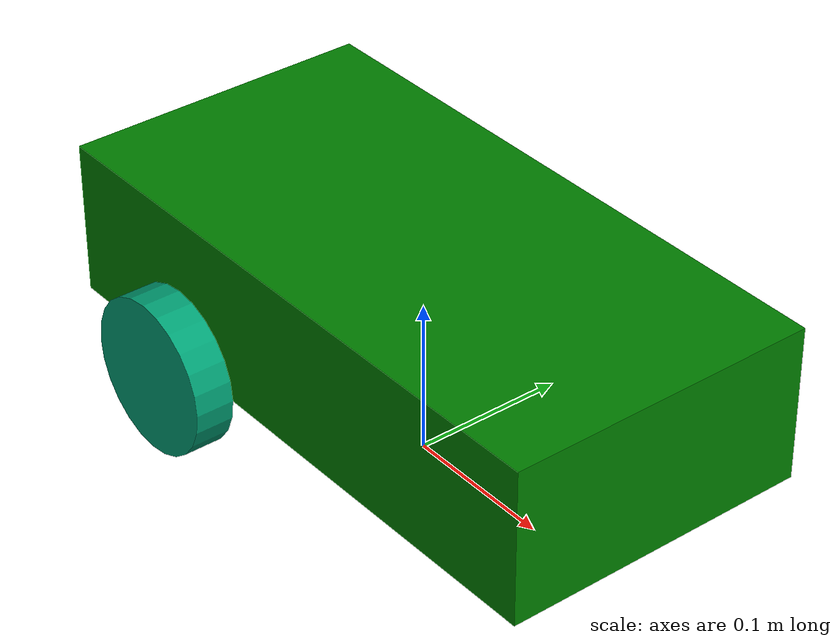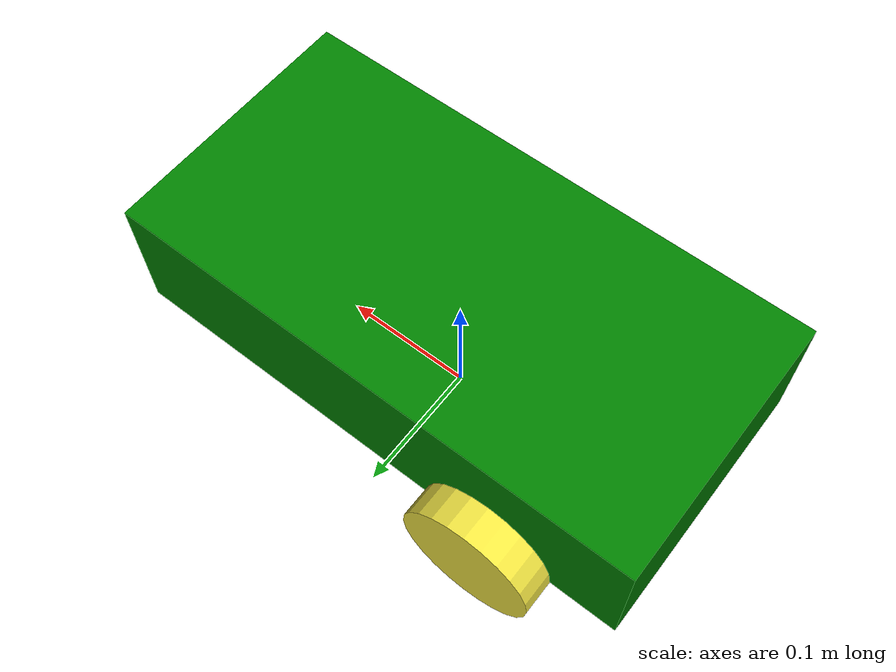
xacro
<?xml version="1.0"?>
<robot xmlns:xacro="http://www.ros.org/wiki/xacro" name="test">

    <!-- Creating Variables -->
    <!-- Base Variables -->
    <xacro:property name='base_length' value='0.4'/>
    <xacro:property name='base_width' value='0.2'/>
    <xacro:property name='base_height' value='0.1'/>

    <!-- Wheels variables -->
    <xacro:property name='wheel_radius' value='${base_length / 8.0}'/>
    <xacro:property name='wheel_length' value='${wheel_radius / 2.0}'/>

    <material name='green'>
        <color rgba="0.0 0.5 0.0 1.0"/>
    </material>

    <!-- base_foot joints -->
    <link name="foot"/>
    <link name="base_link">
        <visual>
            <geometry>
                <box size="${base_length} ${base_width} ${base_height}"/>
            </geometry>
            <origin xyz="0.0 0.0 ${base_height / 2.0}" rpy="0.0 0.0 0.0"/>
            <material name="green"/>
        </visual>
    </link>
    <joint name="base_foot" type="fixed">
        <parent link="foot"/>
        <child link="base_link"/>
        <origin xyz="0.0 0 ${base_height / 2.0}" rpy="0 0.0 0.0"/>
    </joint>

    <!-- left wheel joint -->
    <link name="left_wheel_link">
        <visual>
            <geometry>
                <cylinder radius="${wheel_radius}" length="${wheel_length}"/>
            </geometry>
            <origin xyz="0.0 0.0 0.0" rpy="0.0 0.0 0.0"/>
        </visual>
    </link>
    <joint name="base_left_wheel_joint" type="continuous">
        <parent link="base_link"/>
        <child link="left_wheel_link"/>
        <origin xyz="${-base_length / 4.0} ${-base_width / 2.0 + -wheel_length / 2.0} 0.0" rpy="${pi / 2.0} 0.0 0.0"/>
        <axis xyz="0.0 0 1"/>
    </joint>

    <!-- right wheel joint -->
    <link name="right_wheel_link">
        <visual>
            <geometry>
                <cylinder radius="${wheel_radius}" length="${wheel_length}"/>
            </geometry>
            <origin xyz="0.0 0.0 0.0" rpy="0.0 0.0 0.0"/>
        </visual>
    </link>
    <joint name="base_right_wheel_joint" type="continuous">
        <parent link="base_link"/>
        <child link="right_wheel_link"/>
        <origin xyz="${-base_length / 4.0} ${base_width / 2.0 + wheel_length / 2.0} 0.0" rpy="${pi / 2.0} 0.0 0.0"/>
        <axis xyz="0.0 0 1"/>
    </joint>

    <!-- front sphere joint -->
    <link name="front_sphere">
        <visual>
            <geometry>
                <sphere radius="${wheel_radius / 2.0}"/>
            </geometry>
            <origin xyz="0.0 0.0 0.0" rpy="0.0 0.0 0.0"/>
        </visual>
    </link>
    <joint name="base_sphere_joint" type="fixed">
        <parent link="base_link"/>
        <child link="front_sphere"/>
        <origin xyz="${base_length / 4.0} 0 ${-wheel_radius / 2.0}" rpy="0 0.0 0.0"/>
    </joint>

</robot>
